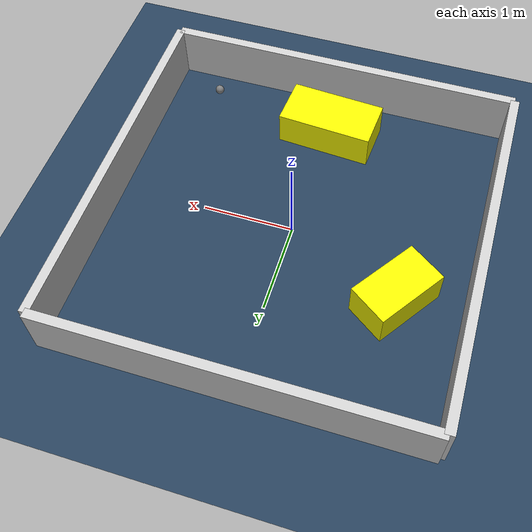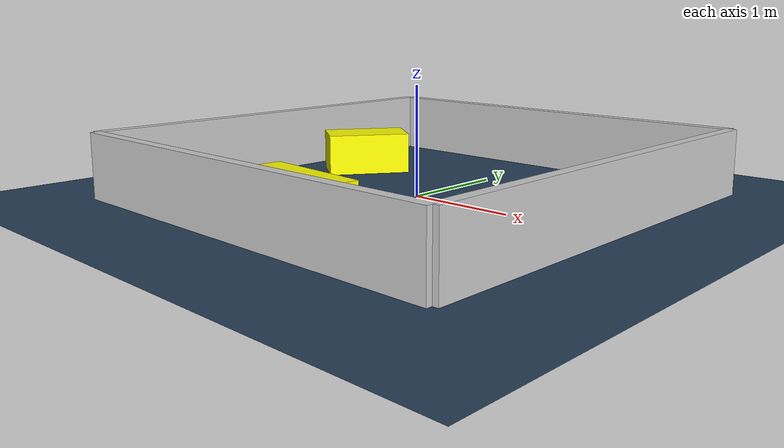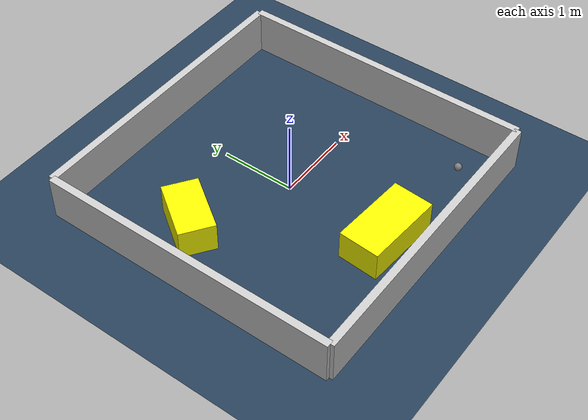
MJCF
<?xml version="1.0" ?>
<mujoco model="generated_environment">
  <option timestep="0.01" integrator="RK4" cone="elliptic"/>
  <default>
    <geom density="1"/>
  </default>
  <asset>
    <texture builtin="gradient" height="3072" rgb1="0.3 0.5 0.7" rgb2="0 0 0" type="skybox" width="512"/>
    <texture builtin="checker" height="300" mark="edge" markrgb="0.8 0.8 0.8" name="groundplane" rgb1="0.2 0.3 0.4" rgb2="0.1 0.2 0.3" type="2d" width="300"/>
    <material name="groundplane" reflectance="0.2" texrepeat="5 5" texture="groundplane" texuniform="true"/>
    <material name="robot" rgba="0.0 1.0 0.0 1"/>
  </asset>
  <worldbody>
    <light dir="0 0 -1" directional="true" pos="0 0 1.5"/>
    <geom condim="4" friction="1.0 0.005 0.001" material="groundplane" name="floor" size="0 0 0.05" type="plane"/>
    <body name="walls">
      <geom name="wall_1" condim="4" pos="-2.0 0.0 0.3" rgba="0.800000011920929 0.800000011920929 0.800000011920929 1.0" size="0.05 2.0 0.3" type="box"/>
      <geom name="wall_2" condim="4" pos="2.0 0.0 0.3" rgba="0.800000011920929 0.800000011920929 0.800000011920929 1.0" size="0.05 2.0 0.3" type="box"/>
      <geom name="wall_3" condim="4" pos="0.0 -2.0 0.3" rgba="0.800000011920929 0.800000011920929 0.800000011920929 1.0" size="2.0 0.05 0.3" type="box"/>
      <geom name="wall_4" condim="4" pos="0.0 2.0 0.3" rgba="0.800000011920929 0.800000011920929 0.800000011920929 1.0" size="2.0 0.05 0.3" type="box"/>
    </body>
    <body name="robot">
      <joint name="joint_x" type="slide" pos="0 0 0" axis="1 0 0"/>
      <joint name="joint_y" type="slide" pos="0 0 0" axis="0 1 0"/>
      <geom name="robot" type="sphere" pos="1.379830903086566 -1.5619719654739272 0.2" size="0.05" mass="5." friction="1.0 0.005 0.0001" condim="4"/>
      <site name="sensor_ball"/>
    </body>
    <body name="obstacle_1_movable">
      <geom name="obstacle_1_movable" condim="4" pos="-0.03558964521569252 -1.4201747248875418 0.2" euler="0 0 265.87047712919895" friction="1.0 0.005 0.001" rgba="1 1 0 1" size="0.2725872788566269 0.5301288490244005 0.2" type="box" mass="0.1"/>
      <joint type="free"/>
    </body>
    <body name="obstacle_2_movable">
      <geom name="obstacle_2_movable" condim="4" pos="-1.2520209973004472 0.5570164949764016 0.2" euler="0 0 55.099328987988144" friction="1.0 0.005 0.001" rgba="1 1 0 1" size="0.403721043933479 0.23319573760360066 0.2" type="box" mass="0.1"/>
      <joint type="free"/>
    </body>
  </worldbody>
  <actuator>
    <motor name="actuator_x" joint="joint_x" gear="1" ctrlrange="-1 1"/>
    <motor name="actuator_y" joint="joint_y" gear="1" ctrlrange="-1 1"/>
  </actuator>
</mujoco>
